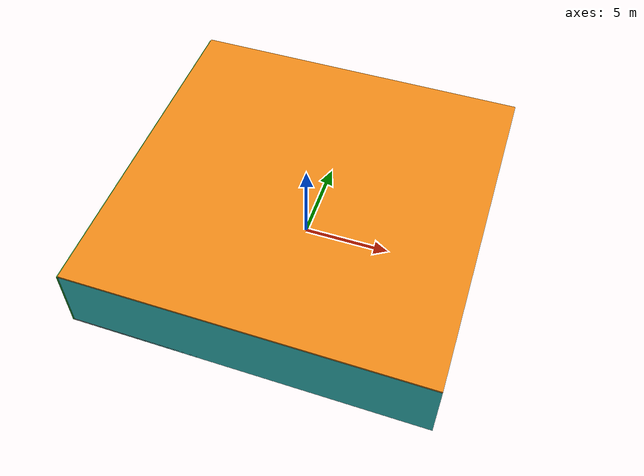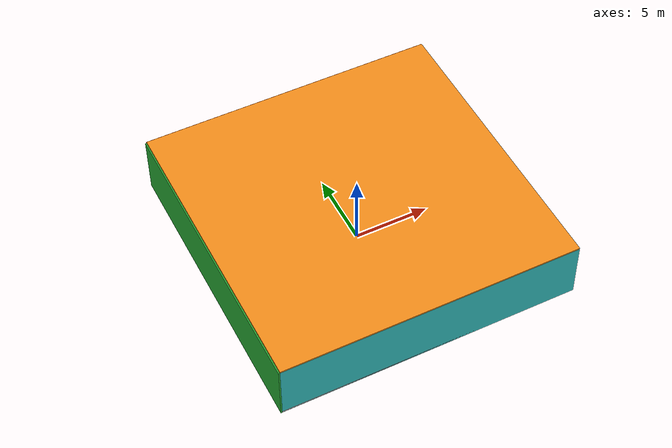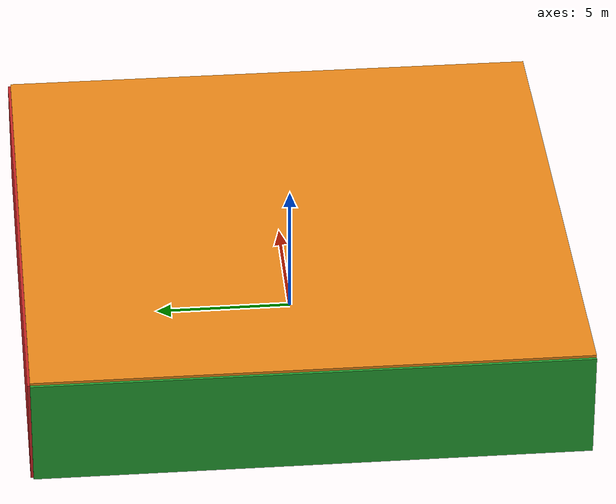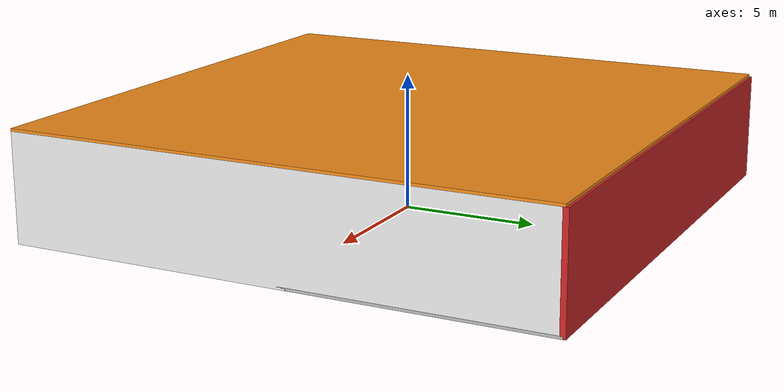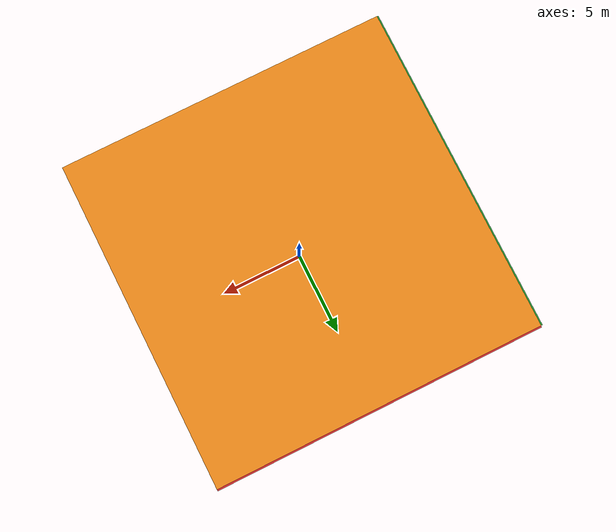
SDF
<sdf version="1.4">
 <world name="default">
  <physics type="ode">
   <max_step_size>0.001</max_step_size>
   <real_time_factor>1</real_time_factor>
   <real_time_update_rate>1000</real_time_update_rate>
   <gravity>0 0 -9.8</gravity>
  </physics>
  <scene><ambient>0.4 0.4 0.4 1</ambient><background>0.7 0.7 0.7 1</background><shadows>1</shadows></scene>
  <model name="Surrounding">
   <static>1</static>
   <link name="Ceiling">
    <collision name="Ceiling_Collision"><geometry><box><size>20 20 0.1</size></box></geometry></collision>
    <visual name="Ceiling_Visual">
     <geometry><box><size>20 20 0.1</size></box></geometry>
     <material>
      <script><uri>file://media/materials/scripts/gazebo.material</uri><name>Gazebo/Orange</name></script>
     </material>
    </visual>
    <pose>0 0 4.05 0 0 0</pose>
   </link>
   <link name="Wall_South">
    <collision name="Wall_South_Collision">
     <geometry><box><size>20 0 4</size></box></geometry>
     <pose>0 0 2 0 -0 0</pose>
    </collision>
    <visual name="Wall_South_Visual">
     <pose>0 0 2 0 -0 0</pose>
     <geometry><box><size>20 0 4</size></box></geometry>
     <material>
      <script><uri>file://media/materials/scripts/gazebo.material</uri><name>Gazebo/TurquoiseGlow</name></script>
     </material>
    </visual>
    <velocity_decay><linear>0</linear><angular>0</angular></velocity_decay>
    <pose>0 -10 0 0 -0 0</pose>
   </link>
   <link name="Wall_East">
    <collision name="Wall_21_Collision">
     <geometry><box><size>20 0 4</size></box></geometry>
     <pose>0 0 2 0 -0 0</pose>
    </collision>
    <visual name="Wall_21_Visual">
     <pose>0 0 2 0 -0 0</pose>
     <geometry><box><size>20 0 4</size></box></geometry>
     <material>
      <script><uri>file://media/materials/scripts/gazebo.material</uri><name>Gazebo/WhiteGlow</name></script>
     </material>
    </visual>
    <velocity_decay><linear>0</linear><angular>0</angular></velocity_decay>
    <pose>10 0 0 0 -0 1.5708</pose>
   </link>
   <link name="Wall_North">
    <collision name="Wall_22_Collision">
     <geometry><box><size>20 0.2 4</size></box></geometry>
     <pose>0 0 2 0 -0 0</pose>
    </collision>
    <visual name="Wall_22_Visual">
     <pose>0 0 2 0 -0 0</pose>
     <geometry><box><size>20 0.2 4</size></box></geometry>
     <material>
      <script><uri>file://media/materials/scripts/gazebo.material</uri><name>Gazebo/RedBright</name></script>
     </material>
    </visual>
    <velocity_decay><linear>0</linear><angular>0</angular></velocity_decay>
    <pose>0 10 0 0 -0 0</pose>
   </link>
   <link name="Wall_West">
    <collision name="Wall_23_Collision">
     <geometry><box><size>20 0.2 4</size></box></geometry>
     <pose>0 0 2 0 -0 0</pose>
    </collision>
    <visual name="Wall_23_Visual">
     <pose>0 0 2 0 -0 0</pose>
     <geometry><box><size>20 0.2 4</size></box></geometry>
     <material>
      <script><uri>file://media/materials/scripts/gazebo.material</uri><name>Gazebo/Green</name></script>
     </material>
    </visual>
    <velocity_decay><linear>0</linear><angular>0</angular></velocity_decay>
    <pose>-10 0 0 0 0 -1.5708</pose>
   </link>
   <link name="Ground_link">
    <collision name="collision">
     <pose>0 0 .05 0 -0 0</pose>
     <geometry><box><size>20 20 0.1</size></box></geometry>
    </collision>
    <visual name="visual">
     <pose>0 0 .05 0 -0 0</pose>
     <geometry><box><size>20 20 0.1</size></box></geometry>
     <material>
      <script><uri>file://media/materials/scripts/gazebo.material</uri><name>Gazebo/JointAnchor</name></script>
     </material>
    </visual>
   </link>
   <static>1</static>
  </model>
  <spherical_coordinates>
   <surface_model>EARTH_WGS84</surface_model>
   <latitude_deg>0</latitude_deg>
   <longitude_deg>0</longitude_deg>
   <elevation>0</elevation>
   <heading_deg>0</heading_deg>
  </spherical_coordinates>
  <light name="lightball_0" type="diffuse">
   <diffuse>0.8 0.8 0.8 1</diffuse>
   <specular>0.2 0.2 0.2 1</specular>
   <attenuation>
    <range>100</range>
    <constant>0.7</constant>
    <linear>0.01</linear>
    <quadratic>0.001</quadratic>
   </attenuation>
   <direction>-0.5 0.1 -0.9</direction>
   <pose>0.732191639046 -6.04758096538 1.23352456224 0 0 0</pose>
  </light>
  <light name="lightball_1" type="diffuse">
   <diffuse>0.8 0.8 0.8 1</diffuse>
   <specular>0.2 0.2 0.2 1</specular>
   <attenuation>
    <range>100</range>
    <constant>0.7</constant>
    <linear>0.01</linear>
    <quadratic>0.001</quadratic>
   </attenuation>
   <direction>-0.5 0.1 -0.9</direction>
   <pose>-2.55164463276 -0.720350486971 2.08623953131 0 0 0</pose>
  </light>
  <include><uri>model://cabinet</uri><pose>-8.30272220639 8.30252882449 0 0 0 1.48224948932</pose></include>
  <include>
   <uri>model://construction_cone</uri>
   <pose>-4.49807100753 2.05284802809 0 0 0 3.04400551818</pose>
  </include>
  <include>
   <uri>model://robocup_3Dsim_goal</uri>
   <pose>-4.56449213353 4.71237641268 0 0 0 2.99235647376</pose>
  </include>
  <include><uri>model://table</uri><pose>-3.33100401203 7.45071018748 0 0 0 2.38791281976</pose></include>
  <include>
   <uri>model://construction_cone</uri>
   <pose>-1.31298781689 -0.882147655083 0 0 0 0.121834064612</pose>
  </include>
  <include>
   <uri>model://construction_cone</uri>
   <pose>-2.66996319979 1.02027586548 0 0 0 1.84620282965</pose>
  </include>
  <include>
   <uri>model://textured_shapes</uri>
   <pose>5.41645673457 -3.47394188586 0 0 0 0.513328619151</pose>
  </include>
 </world>
</sdf>

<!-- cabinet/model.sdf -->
<sdf version="1.5">
  <model name="cabinet">
    <static>true</static>
    <link name="cabinet_bottom_plate">
      <inertial>
        <pose>0 0 -1 0 0 0</pose>
        <inertia>
          <ixx>2.050000</ixx>
          <ixy>0</ixy>
          <ixz>0</ixz>
          <iyy>2.050000</iyy>
          <iyz>0</iyz>
          <izz>2.050000</izz>
        </inertia>
        <mass>25.000000</mass>
      </inertial>
      <collision name="cabinet_bottom_plate_geom">
        <pose>0 0 0.010000 0 0 0</pose>
        <geometry>
          <box>
            <size>0.450000 0.450000 0.020000</size>
          </box>
        </geometry>
      </collision>
      <visual name="cabinet_bottom_plate_geom_visual">
        <pose>0 0 0.010000 0 0 0</pose>
        <geometry>
          <box>
            <size>0.450000 0.450000 0.020000</size>
          </box>
        </geometry>
        <material>
          <script>
            <uri>model://media/materials/scripts/gazebo.material</uri>
            <name>Gazebo/Wood</name>
          </script>
        </material>
      </visual>
      <collision name="cabinet_bottom_plate_geom_cabinet_back_plate">
        <pose>0.235000 0 0.510000 0 0 0</pose>
        <geometry>
          <box>
            <size>0.020000 0.450000 1.020000</size>
          </box>
        </geometry>
      </collision>
      <visual name="cabinet_bottom_plate_geom_cabinet_back_plate_visual">
        <pose>0.235000 0 0.510000 0 0 0</pose>
        <geometry>
          <box>
            <size>0.020000 0.450000 1.020000</size>
          </box>
        </geometry>
        <material>
          <script>
            <uri>model://media/materials/scripts/gazebo.material</uri>
            <name>Gazebo/Wood</name>
          </script>
        </material>
      </visual>
      <collision name="cabinet_bottom_plate_geom_cabinet_left_plate">
        <pose>0 0.235000 0.510000 0 0 0</pose>
        <geometry>
          <box>
            <size>0.450000 0.020000 1.020000</size>
          </box>
        </geometry>
      </collision>
      <visual name="cabinet_bottom_plate_geom_cabinet_left_plate_visual">
        <pose>0 0.235000 0.510000 0 0 0</pose>
        <geometry>
          <box>
            <size>0.450000 0.020000 1.020000</size>
          </box>
        </geometry>
        <material>
          <script>
            <uri>model://media/materials/scripts/gazebo.material</uri>
            <name>Gazebo/Wood</name>
          </script>
        </material>
      </visual>
      <collision name="cabinet_bottom_plate_geom_cabinet_middle_plate">
        <pose>0 0 0.510000 0 0 0</pose>
        <geometry>
          <box>
            <size>0.450000 0.450000 0.020000</size>
          </box>
        </geometry>
      </collision>
      <visual name="cabinet_bottom_plate_geom_cabinet_middle_plate_visual">
        <pose>0 0 0.510000 0 0 0</pose>
        <geometry>
          <box>
            <size>0.450000 0.450000 0.020000</size>
          </box>
        </geometry>
        <material>
          <script>
            <uri>model://media/materials/scripts/gazebo.material</uri>
            <name>Gazebo/Wood</name>
          </script>
        </material>
      </visual>
      <collision name="cabinet_bottom_plate_geom_cabinet_right_plate">
        <pose>0 -0.235000 0.510000 0 0 0</pose>
        <geometry>
          <box>
            <size>0.450000 0.020000 1.020000</size>
          </box>
        </geometry>
      </collision>
      <visual name="cabinet_bottom_plate_geom_cabinet_right_plate_visual">
        <pose>0 -0.235000 0.510000 0 0 0</pose>
        <geometry>
          <box>
            <size>0.450000 0.020000 1.020000</size>
          </box>
        </geometry>
        <material>
          <script>
            <uri>model://media/materials/scripts/gazebo.material</uri>
            <name>Gazebo/Wood</name>
          </script>
        </material>
      </visual>
      <collision name="cabinet_bottom_plate_geom_cabinet_top_plate">
        <pose>0 0 1.010000 0 0 0</pose>
        <geometry>
          <box>
            <size>0.450000 0.450000 0.020000</size>
          </box>
        </geometry>
      </collision>
      <visual name="cabinet_bottom_plate_geom_cabinet_top_plate_visual">
        <pose>0 0 1.010000 0 0 0</pose>
        <geometry>
          <box>
            <size>0.450000 0.450000 0.020000</size>
          </box>
        </geometry>
        <material>
          <script>
            <uri>model://media/materials/scripts/gazebo.material</uri>
            <name>Gazebo/Wood</name>
          </script>
        </material>
      </visual>
    </link>
  </model>
</sdf>

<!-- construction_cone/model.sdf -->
<sdf version="1.5">
  <model name="Construction Cone">
    <link name="link">
      <collision name="collision">
        <geometry>
          <mesh>
            <scale>10 10 10</scale>
            <uri>file://isr-testbed/construction_cone/meshes/construction_cone.dae</uri>
          </mesh>
        </geometry>
      </collision>
      <visual name="visual">
        <geometry>
          <mesh>
            <scale>10 10 10</scale>
            <uri>file://isr-testbed/construction_cone/meshes/construction_cone.dae</uri>
          </mesh>
        </geometry>
      </visual>
    </link>
  </model>
</sdf>

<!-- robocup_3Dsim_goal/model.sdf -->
<sdf version="1.5">
  <model name="robocup_3d_goal">
    <static>true</static>
    <link name="left_post">
      <pose>0 1.05 0.45 0 0 0</pose>
      <collision name="collision">
        <geometry>
          <cylinder>
            <radius>0.05</radius>
            <length>0.9</length>
          </cylinder>
        </geometry>
      </collision>
      <visual name="visual">
        <geometry>
          <cylinder>
            <radius>0.05</radius>
            <length>0.9</length>
          </cylinder>
        </geometry>
        <material>
          <script>
            <uri>file://media/materials/scripts/gazebo.material</uri>
            <name>Gazebo/ZincYellow</name>
          </script>
        </material>
      </visual>
    </link>
    <link name="left_support_horiz_lower">
      <pose>0.30 1.05 0.01 0 0 0</pose>
      <collision name="collision">
        <geometry>
          <box>
            <size>0.50 0.02 0.02</size>
          </box>
        </geometry>
      </collision>
      <visual name="visual">
        <geometry>
          <box>
            <size>0.50 0.02 0.02</size>
          </box>
        </geometry>
        <material>
          <script>
            <uri>file://media/materials/scripts/gazebo.material</uri>
            <name>Gazebo/White</name>
          </script>
        </material>
      </visual>
    </link>
    <link name="left_support_horiz_upper">
      <pose>0.30 1.05 0.79 0 0 0</pose>
      <collision name="collision">
        <geometry>
          <box>
            <size>0.50 0.02 0.02</size>
          </box>
        </geometry>
      </collision>
      <visual name="visual">
        <geometry>
          <box>
            <size>0.50 0.02 0.02</size>
          </box>
        </geometry>
        <material>
          <script>
            <uri>file://media/materials/scripts/gazebo.material</uri>
            <name>Gazebo/White</name>
          </script>
        </material>
      </visual>
    </link>
    <link name="left_support_vertical">
      <pose>0.56 1.05 0.4 0 1.5708 0</pose>
      <collision name="collision">
        <geometry>
          <box>
            <size>0.80 0.02 0.02</size>
          </box>
        </geometry>
      </collision>
      <visual name="visual">
        <geometry>
          <box>
            <size>0.80 0.02 0.02</size>
          </box>
        </geometry>
        <material>
          <script>
            <uri>file://media/materials/scripts/gazebo.material</uri>
            <name>Gazebo/White</name>
          </script>
        </material>
      </visual>
    </link>
    <link name="right_support_horiz_lower">
      <pose>0.30 -1.05 0.01 0 0 0</pose>
      <collision name="collision">
        <geometry>
          <box>
            <size>0.50 0.02 0.02</size>
          </box>
        </geometry>
      </collision>
      <visual name="visual">
        <geometry>
          <box>
            <size>0.50 0.02 0.02</size>
          </box>
        </geometry>
        <material>
          <script>
            <uri>file://media/materials/scripts/gazebo.material</uri>
            <name>Gazebo/White</name>
          </script>
        </material>
      </visual>
    </link>
    <link name="right_support_horiz_upper">
      <pose>0.30 -1.05 0.79 0 0 0</pose>
      <collision name="collision">
        <geometry>
          <box>
            <size>0.50 0.02 0.02</size>
          </box>
        </geometry>
      </collision>
      <visual name="visual">
        <geometry>
          <box>
            <size>0.50 0.02 0.02</size>
          </box>
        </geometry>
        <material>
          <script>
            <uri>file://media/materials/scripts/gazebo.material</uri>
            <name>Gazebo/White</name>
          </script>
        </material>
      </visual>
    </link>
    <link name="right_support_vertical">
      <pose>0.56 -1.05 0.4 0 1.5708 0</pose>
      <collision name="collision">
        <geometry>
          <box>
            <size>0.80 0.02 0.02</size>
          </box>
        </geometry>
      </collision>
      <visual name="visual">
        <geometry>
          <box>
            <size>0.80 0.02 0.02</size>
          </box>
        </geometry>
        <material>
          <script>
            <uri>file://media/materials/scripts/gazebo.material</uri>
            <name>Gazebo/White</name>
          </script>
        </material>
      </visual>
    </link>
    <link name="center_support_horiz_lower">
      <pose>0.56 0 0.01 0 1.5708 0</pose>
      <collision name="collision">
        <geometry>
          <box>
            <size>0.02 2.08 0.02</size>
          </box>
        </geometry>
      </collision>
      <visual name="visual">
        <geometry>
          <box>
            <size>0.02 2.08 0.02</size>
          </box>
        </geometry>
        <material>
          <script>
            <uri>file://media/materials/scripts/gazebo.material</uri>
            <name>Gazebo/White</name>
          </script>
        </material>
      </visual>
    </link>
    <link name="center_support_horiz_upper">
      <pose>0.56 0 0.79 0 1.5708 0</pose>
      <collision name="collision">
        <geometry>
          <box>
            <size>0.02 2.08 0.02</size>
          </box>
        </geometry>
      </collision>
      <visual name="visual">
        <geometry>
          <box>
            <size>0.02 2.08 0.02</size>
          </box>
        </geometry>
        <material>
          <script>
            <uri>file://media/materials/scripts/gazebo.material</uri>
            <name>Gazebo/White</name>
          </script>
        </material>
      </visual>
    </link>
    <link name="right_post">
      <pose>0 -1.05 0.45 0 0 0</pose>
      <collision name="collision">
        <geometry>
          <cylinder>
            <radius>0.05</radius>
            <length>0.9</length>
          </cylinder>
        </geometry>
      </collision>
      <visual name="visual">
        <geometry>
          <cylinder>
            <radius>0.05</radius>
            <length>0.9</length>
          </cylinder>
        </geometry>
        <material>
          <script>
            <uri>file://media/materials/scripts/gazebo.material</uri>
            <name>Gazebo/ZincYellow</name>
          </script>
        </material>
      </visual>
    </link>
    <link name="crossbar">
      <pose>0 0 0.85 1.57 1.57 0</pose>
      <collision name="collision">
        <geometry>
          <cylinder>
            <radius>0.05</radius>
            <length>2.0</length>
          </cylinder>
        </geometry>
      </collision>
      <visual name="visual">
        <geometry>
          <cylinder>
            <radius>0.05</radius>
            <length>2.0</length>
          </cylinder>
        </geometry>
        <material>
          <script>
            <uri>file://media/materials/scripts/gazebo.material</uri>
            <name>Gazebo/ZincYellow</name>
          </script>
        </material>
      </visual>
    </link>
    <link name="center_net">
      <pose>0.56 0 0.40 0 0 0</pose>
      <collision name="collision">
        <geometry>
          <box>
            <size>0.01 2.1 0.80</size>
          </box>
        </geometry>
      </collision>
      <visual name="visual">
        <geometry>
          <box>
            <size>0.01 2.1 0.80</size>
          </box>
        </geometry>
        <material>
          <script>
            <uri>model://../model_source/models/robocup09_spl_field/materials/scripts/</uri>
            <uri>model://../model_source/models/robocup09_spl_field/materials/textures/</uri>
            <name>RoboCup/Net</name>
          </script>
        </material>
      </visual>
    </link>
    <link name="left_net">
      <pose>0.30 1.05 0.40 0 0 0</pose>
      <collision name="collision">
        <geometry>
          <box>
            <size>0.50 0.01 0.76</size>
          </box>
        </geometry>
      </collision>
      <visual name="visual">
        <geometry>
          <box>
            <size>0.50 0.01 0.76</size>
          </box>
        </geometry>
        <material>
          <script>
            <uri>model://../model_source/models/robocup09_spl_field/materials/scripts/</uri>
            <uri>model://../model_source/models/robocup09_spl_field/materials/textures/</uri>
            <name>RoboCup/Net</name>
          </script>
        </material>
      </visual>
    </link>
    <link name="right_net">
      <pose>0.30 -1.05 0.40 0 0 0</pose>
      <collision name="collision">
        <geometry>
          <box>
            <size>0.50 0.01 0.76</size>
          </box>
        </geometry>
      </collision>
      <visual name="visual">
        <geometry>
          <box>
            <size>0.50 0.01 0.76</size>
          </box>
        </geometry>
        <material>
          <script>
            <uri>model://../model_source/models/robocup09_spl_field/materials/scripts/</uri>
            <uri>model://../model_source/models/robocup09_spl_field/materials/textures/</uri>
            <name>RoboCup/Net</name>
          </script>
        </material>
      </visual>
    </link>
  </model>
</sdf>

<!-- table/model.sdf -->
<sdf version="1.5">
  <model name="table">
    <static>true</static>
    <link name="link">
      <collision name="surface">
        <pose>0 0 1.0 0 0 0</pose>
        <geometry>
          <box>
            <size>1.5 0.8 0.03</size>
          </box>
        </geometry>
        <surface>
          <friction>
            <ode>
              <mu>0.6</mu>
              <mu2>0.6</mu2>
            </ode>
          </friction>
        </surface>
      </collision>
      <visual name="visual1">
        <pose>0 0 1.0 0 0 0</pose>
        <geometry>
          <box>
            <size>1.5 0.8 0.03</size>
          </box>
        </geometry>
        <material>
          <script>
            <uri>model://media/materials/scripts/gazebo.material</uri>
            <name>Gazebo/Wood</name>
          </script>
        </material>
      </visual>
      <collision name="front_left_leg">
        <pose>0.68 0.38 0.5 0 0 0</pose>
        <geometry>
          <cylinder>
            <radius>0.02</radius>
            <length>1.0</length>
          </cylinder>
        </geometry>
      </collision>
      <visual name="front_left_leg">
        <pose>0.68 0.38 0.5 0 0 0</pose>
        <geometry>
          <cylinder>
            <radius>0.02</radius>
            <length>1.0</length>
          </cylinder>
        </geometry>
        <material>
          <script>
            <uri>model://media/materials/scripts/gazebo.material</uri>
            <name>Gazebo/Grey</name>
          </script>
        </material>
      </visual>
      <collision name="front_right_leg">
        <pose>0.68 -0.38 0.5 0 0 0</pose>
        <geometry>
          <cylinder>
            <radius>0.02</radius>
            <length>1.0</length>
          </cylinder>
        </geometry>
      </collision>
      <visual name="front_right_leg">
        <pose>0.68 -0.38 0.5 0 0 0</pose>
        <geometry>
          <cylinder>
            <radius>0.02</radius>
            <length>1.0</length>
          </cylinder>
        </geometry>
        <material>
          <script>
            <uri>model://media/materials/scripts/gazebo.material</uri>
            <name>Gazebo/Grey</name>
          </script>
        </material>
      </visual>
      <collision name="back_right_leg">
        <pose>-0.68 -0.38 0.5 0 0 0</pose>
        <geometry>
          <cylinder>
            <radius>0.02</radius>
            <length>1.0</length>
          </cylinder>
        </geometry>
      </collision>
      <visual name="back_right_leg">
        <pose>-0.68 -0.38 0.5 0 0 0</pose>
        <geometry>
          <cylinder>
            <radius>0.02</radius>
            <length>1.0</length>
          </cylinder>
        </geometry>
        <material>
          <script>
            <uri>model://media/materials/scripts/gazebo.material</uri>
            <name>Gazebo/Grey</name>
          </script>
        </material>
      </visual>
      <collision name="back_left_leg">
        <pose>-0.68 0.38 0.5 0 0 0</pose>
        <geometry>
          <cylinder>
            <radius>0.02</radius>
            <length>1.0</length>
          </cylinder>
        </geometry>
      </collision>
      <visual name="back_left_leg">
        <pose>-0.68 0.38 0.5 0 0 0</pose>
        <geometry>
          <cylinder>
            <radius>0.02</radius>
            <length>1.0</length>
          </cylinder>
        </geometry>
        <material>
          <script>
            <uri>model://media/materials/scripts/gazebo.material</uri>
            <name>Gazebo/Grey</name>
          </script>
        </material>
      </visual>
    </link>
  </model>
</sdf>

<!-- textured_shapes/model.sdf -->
<sdf version="1.6">
  <model name="textured_shapes">
    <pose>0 0 0.5 0 0 0</pose>
    <link name="box">
      <pose>0 -1.5 0 0 0 0</pose>
      <collision name="collision">
        <geometry>
          <box>
            <size>1 1 1</size>
          </box>
        </geometry>
      </collision>
      <visual name="visual">
        <geometry>
          <box>
            <size>1 1 1</size>
          </box>
        </geometry>
        <material>
          <script>
            <uri>model://../model_source/models/textured_shapes/materials/scripts</uri>
            <uri>model://../model_source/models/textured_shapes/materials/textures</uri>
            <name>TexturedShape/Squares</name>
          </script>
        </material>
      </visual>
    </link>
    <link name="sphere">
      <collision name="collision">
        <geometry>
          <sphere>
            <radius>0.5</radius>
          </sphere>
        </geometry>
      </collision>
      <visual name="visual">
        <geometry>
          <sphere>
            <radius>0.5</radius>
          </sphere>
        </geometry>
        <material>
          <script>
            <uri>model://../model_source/models/textured_shapes/materials/scripts</uri>
            <uri>model://../model_source/models/textured_shapes/materials/textures</uri>
            <name>TexturedShape/Squares</name>
          </script>
        </material>
      </visual>
    </link>
    <link name="cylinder">
      <pose>0 1.5 0 0 0 0</pose>
      <collision name="collision">
        <geometry>
          <cylinder>
            <radius>0.5</radius>
            <length>1</length>
          </cylinder>
        </geometry>
      </collision>
      <visual name="visual">
        <geometry>
          <cylinder>
            <radius>0.5</radius>
            <length>1</length>
          </cylinder>
        </geometry>
        <material>
          <script>
            <uri>model://../model_source/models/textured_shapes/materials/scripts</uri>
            <uri>model://../model_source/models/textured_shapes/materials/textures</uri>
            <name>TexturedShape/Squares</name>
          </script>
        </material>
      </visual>
    </link>
  </model>
</sdf>
